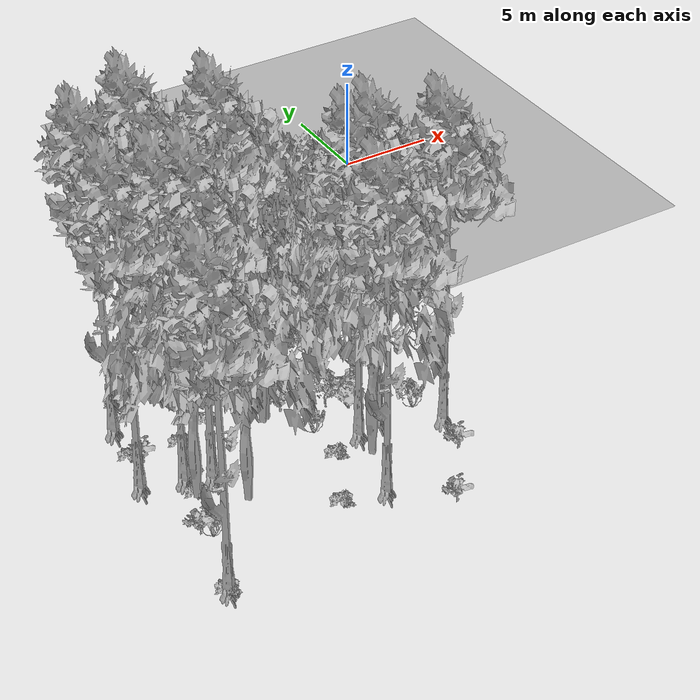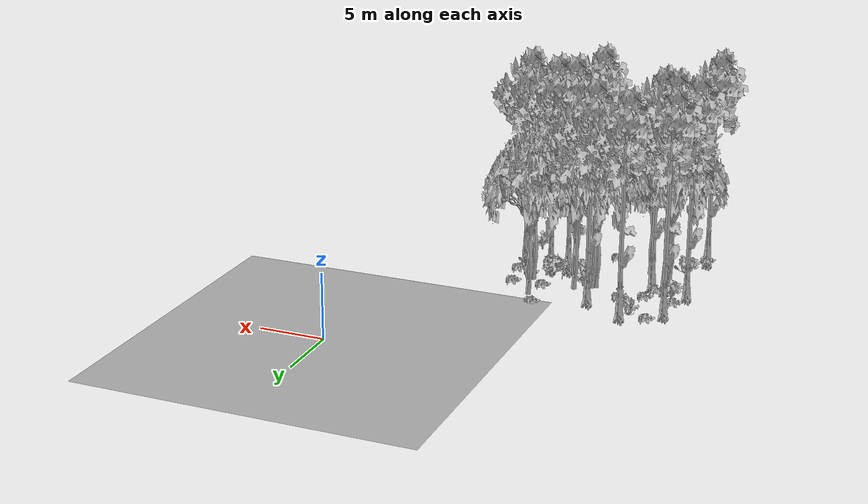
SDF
<sdf version="1.7">
 <world name="default">
  <model name="ground_plane">
   <static>1</static>
   <link name="link">
    <collision name="collision">
     <pose>-50 0 0 0 -0 0</pose>
     <geometry><plane><normal>0 0 1</normal><size>80 80</size></plane></geometry>
     <surface><contact><ode><min_depth>0.01</min_depth><max_vel>0</max_vel></ode></contact></surface>
    </collision>
    <visual name="grass">
     <cast_shadows>0</cast_shadows>
     <geometry>
      <mesh>
       <scale>0.46714285714285714 0.46714285714285714 0.1</scale>
       <uri>file://grass_plane/meshes/grass_plane.dae</uri>
      </mesh>
     </geometry>
    </visual>
   </link>
  </model>
  <model name="Tree 32">
   <static>1</static>
   <pose>-14.584538147157481 -16.63451784371337 0 1.57079 -0 0</pose>
   <link name="link">
    <collision name="collision">
     <geometry><mesh><scale>3.5 5 3.5</scale><uri>model://tree_2/meshes/tree_2.obj</uri></mesh></geometry>
    </collision>
    <visual name="visual">
     <geometry><mesh><scale>3.5 5 3.5</scale><uri>model://tree_2/meshes/tree_2.obj</uri></mesh></geometry>
    </visual>
   </link>
  </model>
  <model name="Tree 49">
   <static>1</static>
   <pose>-17.87937491318273 -12.286184084962521 0 1.57079 -0 0</pose>
   <link name="link">
    <collision name="collision">
     <geometry><mesh><scale>3.5 5 3.5</scale><uri>model://tree_9/meshes/tree_9.obj</uri></mesh></geometry>
    </collision>
    <visual name="visual">
     <geometry><mesh><scale>3.5 5 3.5</scale><uri>model://tree_9/meshes/tree_9.obj</uri></mesh></geometry>
    </visual>
   </link>
  </model>
  <model name="Tree 68">
   <static>1</static>
   <pose>-20.7896110764818 -13.827787163931646 0 1.57079 -0 0</pose>
   <link name="link">
    <collision name="collision">
     <geometry><mesh><scale>3.5 5 3.5</scale><uri>model://tree_9/meshes/tree_9.obj</uri></mesh></geometry>
    </collision>
    <visual name="visual">
     <geometry><mesh><scale>3.5 5 3.5</scale><uri>model://tree_9/meshes/tree_9.obj</uri></mesh></geometry>
    </visual>
   </link>
  </model>
  <model name="Tree 100">
   <static>1</static>
   <pose>-19.730004943226096 -19.75440223670578 0 1.57079 -0 0</pose>
   <link name="link">
    <collision name="collision">
     <geometry><mesh><scale>3.5 5 3.5</scale><uri>model://tree_2/meshes/tree_2.obj</uri></mesh></geometry>
    </collision>
    <visual name="visual">
     <geometry><mesh><scale>3.5 5 3.5</scale><uri>model://tree_2/meshes/tree_2.obj</uri></mesh></geometry>
    </visual>
   </link>
  </model>
  <model name="Tree 151">
   <static>1</static>
   <pose>-11.77131927337037 -21.2013143924786 0 1.57079 -0 0</pose>
   <link name="link">
    <collision name="collision">
     <geometry><mesh><scale>3.5 5 3.5</scale><uri>model://tree_2/meshes/tree_2.obj</uri></mesh></geometry>
    </collision>
    <visual name="visual">
     <geometry><mesh><scale>3.5 5 3.5</scale><uri>model://tree_2/meshes/tree_2.obj</uri></mesh></geometry>
    </visual>
   </link>
  </model>
  <model name="Tree 172">
   <static>1</static>
   <pose>-21.20714399395748 -25.4379105881541 0 1.57079 -0 0</pose>
   <link name="link">
    <collision name="collision">
     <geometry><mesh><scale>3.5 5 3.5</scale><uri>model://tree_9/meshes/tree_9.obj</uri></mesh></geometry>
    </collision>
    <visual name="visual">
     <geometry><mesh><scale>3.5 5 3.5</scale><uri>model://tree_9/meshes/tree_9.obj</uri></mesh></geometry>
    </visual>
   </link>
  </model>
  <model name="Tree 182">
   <static>1</static>
   <pose>-21.470315267625352 -17.881002661696115 0 1.57079 -0 0</pose>
   <link name="link">
    <collision name="collision">
     <geometry><mesh><scale>3.5 5 3.5</scale><uri>model://tree_9/meshes/tree_9.obj</uri></mesh></geometry>
    </collision>
    <visual name="visual">
     <geometry><mesh><scale>3.5 5 3.5</scale><uri>model://tree_9/meshes/tree_9.obj</uri></mesh></geometry>
    </visual>
   </link>
  </model>
  <model name="Tree 224">
   <static>1</static>
   <pose>-7.656851699390245 -20.78439097199442 0 1.57079 -0 0</pose>
   <link name="link">
    <collision name="collision">
     <geometry><mesh><scale>3.5 5 3.5</scale><uri>model://tree_9/meshes/tree_9.obj</uri></mesh></geometry>
    </collision>
    <visual name="visual">
     <geometry><mesh><scale>3.5 5 3.5</scale><uri>model://tree_9/meshes/tree_9.obj</uri></mesh></geometry>
    </visual>
   </link>
  </model>
  <model name="Tree 228">
   <static>1</static>
   <pose>-13.358515941512337 -15.916117293400667 0 1.57079 -0 0</pose>
   <link name="link">
    <collision name="collision">
     <geometry><mesh><scale>3.5 5 3.5</scale><uri>model://tree_2/meshes/tree_2.obj</uri></mesh></geometry>
    </collision>
    <visual name="visual">
     <geometry><mesh><scale>3.5 5 3.5</scale><uri>model://tree_2/meshes/tree_2.obj</uri></mesh></geometry>
    </visual>
   </link>
  </model>
  <model name="Tree 234">
   <static>1</static>
   <pose>-12.487567003171414 -23.637002577309687 0 1.57079 -0 0</pose>
   <link name="link">
    <collision name="collision">
     <geometry><mesh><scale>3.5 5 3.5</scale><uri>model://tree_9/meshes/tree_9.obj</uri></mesh></geometry>
    </collision>
    <visual name="visual">
     <geometry><mesh><scale>3.5 5 3.5</scale><uri>model://tree_9/meshes/tree_9.obj</uri></mesh></geometry>
    </visual>
   </link>
  </model>
  <model name="Tree 339">
   <static>1</static>
   <pose>-11.518596402975348 -19.77569341075661 0 1.57079 -0 0</pose>
   <link name="link">
    <collision name="collision">
     <geometry><mesh><scale>3.5 5 3.5</scale><uri>model://tree_9/meshes/tree_9.obj</uri></mesh></geometry>
    </collision>
    <visual name="visual">
     <geometry><mesh><scale>3.5 5 3.5</scale><uri>model://tree_9/meshes/tree_9.obj</uri></mesh></geometry>
    </visual>
   </link>
  </model>
  <model name="Tree 377">
   <static>1</static>
   <pose>-14.82682726210431 -14.201617885998765 0 1.57079 -0 0</pose>
   <link name="link">
    <collision name="collision">
     <geometry><mesh><scale>3.5 5 3.5</scale><uri>model://tree_9/meshes/tree_9.obj</uri></mesh></geometry>
    </collision>
    <visual name="visual">
     <geometry><mesh><scale>3.5 5 3.5</scale><uri>model://tree_9/meshes/tree_9.obj</uri></mesh></geometry>
    </visual>
   </link>
  </model>
  <model name="Tree 406">
   <static>1</static>
   <pose>-14.8252143824112 -16.776505207548862 0 1.57079 -0 0</pose>
   <link name="link">
    <collision name="collision">
     <geometry><mesh><scale>3.5 5 3.5</scale><uri>model://tree_2/meshes/tree_2.obj</uri></mesh></geometry>
    </collision>
    <visual name="visual">
     <geometry><mesh><scale>3.5 5 3.5</scale><uri>model://tree_2/meshes/tree_2.obj</uri></mesh></geometry>
    </visual>
   </link>
  </model>
  <model name="Tree 437">
   <static>1</static>
   <pose>-10.234184102946521 -19.372346934760223 0 1.57079 -0 0</pose>
   <link name="link">
    <collision name="collision">
     <geometry><mesh><scale>3.5 5 3.5</scale><uri>model://tree_9/meshes/tree_9.obj</uri></mesh></geometry>
    </collision>
    <visual name="visual">
     <geometry><mesh><scale>3.5 5 3.5</scale><uri>model://tree_9/meshes/tree_9.obj</uri></mesh></geometry>
    </visual>
   </link>
  </model>
  <model name="Tree 466">
   <static>1</static>
   <pose>-10.530012872245948 -13.565171071538167 0 1.57079 -0 0</pose>
   <link name="link">
    <collision name="collision">
     <geometry><mesh><scale>3.5 5 3.5</scale><uri>model://tree_2/meshes/tree_2.obj</uri></mesh></geometry>
    </collision>
    <visual name="visual">
     <geometry><mesh><scale>3.5 5 3.5</scale><uri>model://tree_2/meshes/tree_2.obj</uri></mesh></geometry>
    </visual>
   </link>
  </model>
  <model name="Tree 548">
   <static>1</static>
   <pose>-18.50199457542176 -18.97076559868177 0 1.57079 -0 0</pose>
   <link name="link">
    <collision name="collision">
     <geometry><mesh><scale>3.5 5 3.5</scale><uri>model://tree_9/meshes/tree_9.obj</uri></mesh></geometry>
    </collision>
    <visual name="visual">
     <geometry><mesh><scale>3.5 5 3.5</scale><uri>model://tree_9/meshes/tree_9.obj</uri></mesh></geometry>
    </visual>
   </link>
  </model>
  <model name="Tree 576">
   <static>1</static>
   <pose>-19.61252463211533 -18.450869792904285 0 1.57079 -0 0</pose>
   <link name="link">
    <collision name="collision">
     <geometry><mesh><scale>3.5 5 3.5</scale><uri>model://tree_9/meshes/tree_9.obj</uri></mesh></geometry>
    </collision>
    <visual name="visual">
     <geometry><mesh><scale>3.5 5 3.5</scale><uri>model://tree_9/meshes/tree_9.obj</uri></mesh></geometry>
    </visual>
   </link>
  </model>
  <model name="Tree 585">
   <static>1</static>
   <pose>-17.921304725540764 -21.01116028735575 0 1.57079 -0 0</pose>
   <link name="link">
    <collision name="collision">
     <geometry><mesh><scale>3.5 5 3.5</scale><uri>model://tree_2/meshes/tree_2.obj</uri></mesh></geometry>
    </collision>
    <visual name="visual">
     <geometry><mesh><scale>3.5 5 3.5</scale><uri>model://tree_2/meshes/tree_2.obj</uri></mesh></geometry>
    </visual>
   </link>
  </model>
  <model name="Tree 614">
   <static>1</static>
   <pose>-9.869744599703118 -16.632170852484307 0 1.57079 -0 0</pose>
   <link name="link">
    <collision name="collision">
     <geometry><mesh><scale>3.5 5 3.5</scale><uri>model://tree_2/meshes/tree_2.obj</uri></mesh></geometry>
    </collision>
    <visual name="visual">
     <geometry><mesh><scale>3.5 5 3.5</scale><uri>model://tree_2/meshes/tree_2.obj</uri></mesh></geometry>
    </visual>
   </link>
  </model>
  <model name="Bush 1">
   <static>1</static>
   <pose>-9.163712386671996 -17.80030540849151 0 1.57079 -0 0</pose>
   <link name="link">
    <collision name="collision">
     <geometry><mesh><scale>2 2 2</scale><uri>model://bush_2/meshes/bush_2.obj</uri></mesh></geometry>
     <surface><contact><collide_without_contact>false</collide_without_contact></contact></surface>
    </collision>
    <visual name="visual">
     <geometry><mesh><scale>2 2 2</scale><uri>model://bush_2/meshes/bush_2.obj</uri></mesh></geometry>
    </visual>
   </link>
  </model>
  <model name="Bush 2">
   <static>1</static>
   <pose>-20.63858470127001 -21.919473601535007 0 1.57079 -0 0</pose>
   <link name="link">
    <collision name="collision">
     <geometry><mesh><scale>2 2 2</scale><uri>model://bush_0/meshes/bush_0.obj</uri></mesh></geometry>
     <surface><contact><collide_without_contact>false</collide_without_contact></contact></surface>
    </collision>
    <visual name="visual">
     <geometry><mesh><scale>2 2 2</scale><uri>model://bush_0/meshes/bush_0.obj</uri></mesh></geometry>
    </visual>
   </link>
  </model>
  <model name="Bush 4">
   <static>1</static>
   <pose>-8.406646802416532 -19.43385703170419 0 1.57079 -0 0</pose>
   <link name="link">
    <collision name="collision">
     <geometry><mesh><scale>2 2 2</scale><uri>model://bush_4/meshes/bush_4.obj</uri></mesh></geometry>
     <surface><contact><collide_without_contact>false</collide_without_contact></contact></surface>
    </collision>
    <visual name="visual">
     <geometry><mesh><scale>2 2 2</scale><uri>model://bush_4/meshes/bush_4.obj</uri></mesh></geometry>
    </visual>
   </link>
  </model>
  <model name="Bush 18">
   <static>1</static>
   <pose>-13.175631847914111 -18.660382221606618 0 1.57079 -0 0</pose>
   <link name="link">
    <collision name="collision">
     <geometry><mesh><scale>2 2 2</scale><uri>model://bush_4/meshes/bush_4.obj</uri></mesh></geometry>
     <surface><contact><collide_without_contact>false</collide_without_contact></contact></surface>
    </collision>
    <visual name="visual">
     <geometry><mesh><scale>2 2 2</scale><uri>model://bush_4/meshes/bush_4.obj</uri></mesh></geometry>
    </visual>
   </link>
  </model>
  <model name="Bush 48">
   <static>1</static>
   <pose>-13.129580235044735 -20.491936585436665 0 1.57079 -0 0</pose>
   <link name="link">
    <collision name="collision">
     <geometry><mesh><scale>2 2 2</scale><uri>model://bush_2/meshes/bush_2.obj</uri></mesh></geometry>
     <surface><contact><collide_without_contact>false</collide_without_contact></contact></surface>
    </collision>
    <visual name="visual">
     <geometry><mesh><scale>2 2 2</scale><uri>model://bush_2/meshes/bush_2.obj</uri></mesh></geometry>
    </visual>
   </link>
  </model>
  <model name="Bush 78">
   <static>1</static>
   <pose>-11.815095925244115 -17.408515270242244 0 1.57079 -0 0</pose>
   <link name="link">
    <collision name="collision">
     <geometry><mesh><scale>2 2 2</scale><uri>model://bush_5/meshes/bush_5.obj</uri></mesh></geometry>
     <surface><contact><collide_without_contact>false</collide_without_contact></contact></surface>
    </collision>
    <visual name="visual">
     <geometry><mesh><scale>2 2 2</scale><uri>model://bush_5/meshes/bush_5.obj</uri></mesh></geometry>
    </visual>
   </link>
  </model>
  <model name="Bush 88">
   <static>1</static>
   <pose>-10.833147560532332 -15.652061837722712 0 1.57079 -0 0</pose>
   <link name="link">
    <collision name="collision">
     <geometry><mesh><scale>2 2 2</scale><uri>model://bush_2/meshes/bush_2.obj</uri></mesh></geometry>
     <surface><contact><collide_without_contact>false</collide_without_contact></contact></surface>
    </collision>
    <visual name="visual">
     <geometry><mesh><scale>2 2 2</scale><uri>model://bush_2/meshes/bush_2.obj</uri></mesh></geometry>
    </visual>
   </link>
  </model>
  <model name="Bush 99">
   <static>1</static>
   <pose>-20.20593739163778 -22.29895967273216 0 1.57079 -0 0</pose>
   <link name="link">
    <collision name="collision">
     <geometry><mesh><scale>2 2 2</scale><uri>model://bush_4/meshes/bush_4.obj</uri></mesh></geometry>
     <surface><contact><collide_without_contact>false</collide_without_contact></contact></surface>
    </collision>
    <visual name="visual">
     <geometry><mesh><scale>2 2 2</scale><uri>model://bush_4/meshes/bush_4.obj</uri></mesh></geometry>
    </visual>
   </link>
  </model>
  <model name="Bush 115">
   <static>1</static>
   <pose>-10.978051837489993 -18.004353275745597 0 1.57079 -0 0</pose>
   <link name="link">
    <collision name="collision">
     <geometry><mesh><scale>2 2 2</scale><uri>model://bush_1/meshes/bush_1.obj</uri></mesh></geometry>
     <surface><contact><collide_without_contact>false</collide_without_contact></contact></surface>
    </collision>
    <visual name="visual">
     <geometry><mesh><scale>2 2 2</scale><uri>model://bush_1/meshes/bush_1.obj</uri></mesh></geometry>
    </visual>
   </link>
  </model>
  <model name="Bush 119">
   <static>1</static>
   <pose>-11.138562189715987 -12.244194433387918 0 1.57079 -0 0</pose>
   <link name="link">
    <collision name="collision">
     <geometry><mesh><scale>2 2 2</scale><uri>model://bush_2/meshes/bush_2.obj</uri></mesh></geometry>
     <surface><contact><collide_without_contact>false</collide_without_contact></contact></surface>
    </collision>
    <visual name="visual">
     <geometry><mesh><scale>2 2 2</scale><uri>model://bush_2/meshes/bush_2.obj</uri></mesh></geometry>
    </visual>
   </link>
  </model>
  <model name="Bush 125">
   <static>1</static>
   <pose>-7.988221044080067 -18.26116872557037 0 1.57079 -0 0</pose>
   <link name="link">
    <collision name="collision">
     <geometry><mesh><scale>2 2 2</scale><uri>model://bush_2/meshes/bush_2.obj</uri></mesh></geometry>
     <surface><contact><collide_without_contact>false</collide_without_contact></contact></surface>
    </collision>
    <visual name="visual">
     <geometry><mesh><scale>2 2 2</scale><uri>model://bush_2/meshes/bush_2.obj</uri></mesh></geometry>
    </visual>
   </link>
  </model>
  <model name="Bush 142">
   <static>1</static>
   <pose>-17.471042220031965 -13.28564596815962 0 1.57079 -0 0</pose>
   <link name="link">
    <collision name="collision">
     <geometry><mesh><scale>2 2 2</scale><uri>model://bush_5/meshes/bush_5.obj</uri></mesh></geometry>
     <surface><contact><collide_without_contact>false</collide_without_contact></contact></surface>
    </collision>
    <visual name="visual">
     <geometry><mesh><scale>2 2 2</scale><uri>model://bush_5/meshes/bush_5.obj</uri></mesh></geometry>
    </visual>
   </link>
  </model>
  <model name="Bush 144">
   <static>1</static>
   <pose>-20.685345925775263 -16.563194110147286 0 1.57079 -0 0</pose>
   <link name="link">
    <collision name="collision">
     <geometry><mesh><scale>2 2 2</scale><uri>model://bush_0/meshes/bush_0.obj</uri></mesh></geometry>
     <surface><contact><collide_without_contact>false</collide_without_contact></contact></surface>
    </collision>
    <visual name="visual">
     <geometry><mesh><scale>2 2 2</scale><uri>model://bush_0/meshes/bush_0.obj</uri></mesh></geometry>
    </visual>
   </link>
  </model>
  <model name="Bush 151">
   <static>1</static>
   <pose>-8.441000469984843 -15.655721701323316 0 1.57079 -0 0</pose>
   <link name="link">
    <collision name="collision">
     <geometry><mesh><scale>2 2 2</scale><uri>model://bush_2/meshes/bush_2.obj</uri></mesh></geometry>
     <surface><contact><collide_without_contact>false</collide_without_contact></contact></surface>
    </collision>
    <visual name="visual">
     <geometry><mesh><scale>2 2 2</scale><uri>model://bush_2/meshes/bush_2.obj</uri></mesh></geometry>
    </visual>
   </link>
  </model>
  <model name="Bush 175">
   <static>1</static>
   <pose>-18.546096708958743 -12.563943846089359 0 1.57079 -0 0</pose>
   <link name="link">
    <collision name="collision">
     <geometry><mesh><scale>2 2 2</scale><uri>model://bush_4/meshes/bush_4.obj</uri></mesh></geometry>
     <surface><contact><collide_without_contact>false</collide_without_contact></contact></surface>
    </collision>
    <visual name="visual">
     <geometry><mesh><scale>2 2 2</scale><uri>model://bush_4/meshes/bush_4.obj</uri></mesh></geometry>
    </visual>
   </link>
  </model>
  <model name="Bush 197">
   <static>1</static>
   <pose>-19.939209233527077 -12.239001989929903 0 1.57079 -0 0</pose>
   <link name="link">
    <collision name="collision">
     <geometry><mesh><scale>2 2 2</scale><uri>model://bush_2/meshes/bush_2.obj</uri></mesh></geometry>
     <surface><contact><collide_without_contact>false</collide_without_contact></contact></surface>
    </collision>
    <visual name="visual">
     <geometry><mesh><scale>2 2 2</scale><uri>model://bush_2/meshes/bush_2.obj</uri></mesh></geometry>
    </visual>
   </link>
  </model>
  <model name="Bush 204">
   <static>1</static>
   <pose>-16.961924275257054 -15.459222568961994 0 1.57079 -0 0</pose>
   <link name="link">
    <collision name="collision">
     <geometry><mesh><scale>2 2 2</scale><uri>model://bush_2/meshes/bush_2.obj</uri></mesh></geometry>
     <surface><contact><collide_without_contact>false</collide_without_contact></contact></surface>
    </collision>
    <visual name="visual">
     <geometry><mesh><scale>2 2 2</scale><uri>model://bush_2/meshes/bush_2.obj</uri></mesh></geometry>
    </visual>
   </link>
  </model>
  <model name="Bush 220">
   <static>1</static>
   <pose>-19.616223558931726 -19.602260481285043 0 1.57079 -0 0</pose>
   <link name="link">
    <collision name="collision">
     <geometry><mesh><scale>2 2 2</scale><uri>model://bush_2/meshes/bush_2.obj</uri></mesh></geometry>
     <surface><contact><collide_without_contact>false</collide_without_contact></contact></surface>
    </collision>
    <visual name="visual">
     <geometry><mesh><scale>2 2 2</scale><uri>model://bush_2/meshes/bush_2.obj</uri></mesh></geometry>
    </visual>
   </link>
  </model>
  <model name="Bush 252">
   <static>1</static>
   <pose>-14.555349187304994 -23.308097373286838 0 1.57079 -0 0</pose>
   <link name="link">
    <collision name="collision">
     <geometry><mesh><scale>2 2 2</scale><uri>model://bush_2/meshes/bush_2.obj</uri></mesh></geometry>
     <surface><contact><collide_without_contact>false</collide_without_contact></contact></surface>
    </collision>
    <visual name="visual">
     <geometry><mesh><scale>2 2 2</scale><uri>model://bush_2/meshes/bush_2.obj</uri></mesh></geometry>
    </visual>
   </link>
  </model>
  <model name="Bush 283">
   <static>1</static>
   <pose>-10.312399369426142 -25.849536114038678 0 1.57079 -0 0</pose>
   <link name="link">
    <collision name="collision">
     <geometry><mesh><scale>2 2 2</scale><uri>model://bush_0/meshes/bush_0.obj</uri></mesh></geometry>
     <surface><contact><collide_without_contact>false</collide_without_contact></contact></surface>
    </collision>
    <visual name="visual">
     <geometry><mesh><scale>2 2 2</scale><uri>model://bush_0/meshes/bush_0.obj</uri></mesh></geometry>
    </visual>
   </link>
  </model>
  <model name="Bush 290">
   <static>1</static>
   <pose>-19.05419453092633 -17.942204357219182 0 1.57079 -0 0</pose>
   <link name="link">
    <collision name="collision">
     <geometry><mesh><scale>2 2 2</scale><uri>model://bush_2/meshes/bush_2.obj</uri></mesh></geometry>
     <surface><contact><collide_without_contact>false</collide_without_contact></contact></surface>
    </collision>
    <visual name="visual">
     <geometry><mesh><scale>2 2 2</scale><uri>model://bush_2/meshes/bush_2.obj</uri></mesh></geometry>
    </visual>
   </link>
  </model>
  <model name="Bush 388">
   <static>1</static>
   <pose>-13.760327214385285 -16.59716429860306 0 1.57079 -0 0</pose>
   <link name="link">
    <collision name="collision">
     <geometry><mesh><scale>2 2 2</scale><uri>model://bush_0/meshes/bush_0.obj</uri></mesh></geometry>
     <surface><contact><collide_without_contact>false</collide_without_contact></contact></surface>
    </collision>
    <visual name="visual">
     <geometry><mesh><scale>2 2 2</scale><uri>model://bush_0/meshes/bush_0.obj</uri></mesh></geometry>
    </visual>
   </link>
  </model>
  <model name="Bush 399">
   <static>1</static>
   <pose>-8.304023076560288 -22.958968675341556 0 1.57079 -0 0</pose>
   <link name="link">
    <collision name="collision">
     <geometry><mesh><scale>2 2 2</scale><uri>model://bush_0/meshes/bush_0.obj</uri></mesh></geometry>
     <surface><contact><collide_without_contact>false</collide_without_contact></contact></surface>
    </collision>
    <visual name="visual">
     <geometry><mesh><scale>2 2 2</scale><uri>model://bush_0/meshes/bush_0.obj</uri></mesh></geometry>
    </visual>
   </link>
  </model>
  <model name="Bush 453">
   <static>1</static>
   <pose>-21.00677771981106 -15.903087879906348 0 1.57079 -0 0</pose>
   <link name="link">
    <collision name="collision">
     <geometry><mesh><scale>2 2 2</scale><uri>model://bush_2/meshes/bush_2.obj</uri></mesh></geometry>
     <surface><contact><collide_without_contact>false</collide_without_contact></contact></surface>
    </collision>
    <visual name="visual">
     <geometry><mesh><scale>2 2 2</scale><uri>model://bush_2/meshes/bush_2.obj</uri></mesh></geometry>
    </visual>
   </link>
  </model>
  <model name="Bush 526">
   <static>1</static>
   <pose>-21.253290111293882 -25.396014072840725 0 1.57079 -0 0</pose>
   <link name="link">
    <collision name="collision">
     <geometry><mesh><scale>2 2 2</scale><uri>model://bush_2/meshes/bush_2.obj</uri></mesh></geometry>
     <surface><contact><collide_without_contact>false</collide_without_contact></contact></surface>
    </collision>
    <visual name="visual">
     <geometry><mesh><scale>2 2 2</scale><uri>model://bush_2/meshes/bush_2.obj</uri></mesh></geometry>
    </visual>
   </link>
  </model>
  <model name="Bush 534">
   <static>1</static>
   <pose>-18.69244546146403 -16.231195228815913 0 1.57079 -0 0</pose>
   <link name="link">
    <collision name="collision">
     <geometry><mesh><scale>2 2 2</scale><uri>model://bush_2/meshes/bush_2.obj</uri></mesh></geometry>
     <surface><contact><collide_without_contact>false</collide_without_contact></contact></surface>
    </collision>
    <visual name="visual">
     <geometry><mesh><scale>2 2 2</scale><uri>model://bush_2/meshes/bush_2.obj</uri></mesh></geometry>
    </visual>
   </link>
  </model>
 </world>
</sdf>
